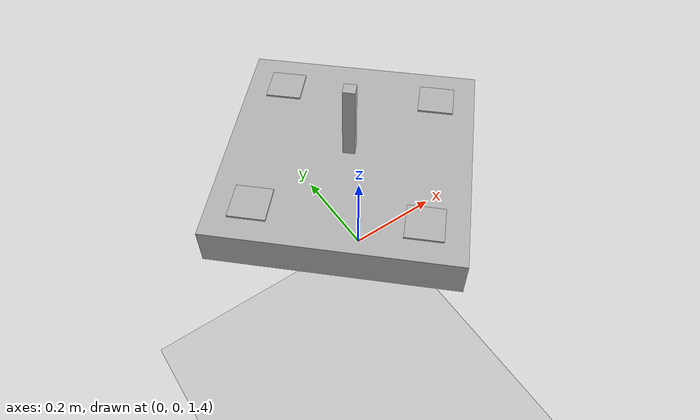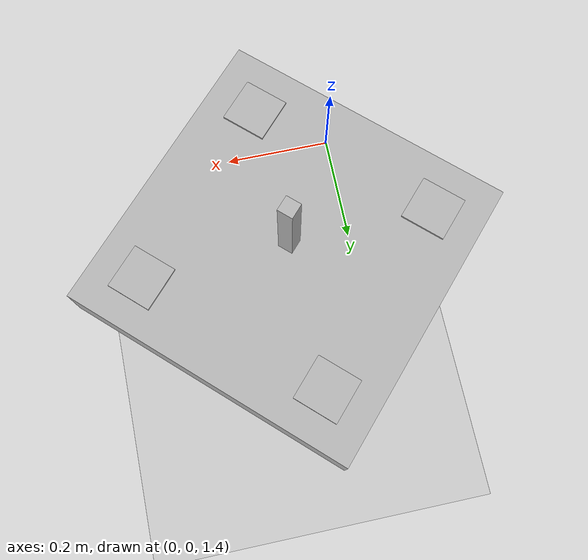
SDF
<?xml version="1.0" encoding="UTF-8"?>
<sdf version='1.6'>
  <world name='world'>

    <!-- Martian Gravity-->
    <gravity>0 0 -3.711</gravity>

    <include>
      <uri>model://sun</uri>
    </include>

    <include>
      <uri>model://ground_plane</uri>
    </include>

    <model name='ar_tags'>
      <link name='mole'>
        <inertial>
          <mass>0.5</mass>
          <inertia>
            <ixx>0.0308333333333</ixx>
            <ixy>0</ixy>
            <ixz>0</ixz>
            <iyy>0.0308333333333</iyy>
            <iyz>0</iyz>
            <izz>0.06</izz>
          </inertia>
        </inertial>

        <collision name='collision'>
          <geometry>
            <box>
              <size>0.6 0.6 0.1</size>
            </box>
          </geometry>
        </collision>

        <visual name='visual'>
          <geometry>
            <box>
              <size>0.6 0.6 0.1</size>
            </box>
          </geometry>
        </visual>
      </link>

      <joint name="mole_nob" type="fixed">
        <pose>0 0 0.05 0 0 0</pose>
        <child>nob</child>
        <parent>mole</parent>
        <axis>
          <xyz>0 0 1</xyz>
        </axis>
      </joint>

      <link name='nob'>
       <pose>0 0 0 0 0 0</pose>
        <inertial>
          <mass>0.1</mass>
          <inertia>
            <ixx>0.00000000003</ixx>
            <ixy>0</ixy>
            <ixz>0</ixz>
            <iyy>0.00000000003</iyy>
            <iyz>0</iyz>
            <izz>0.00000000006</izz>
          </inertia>
        </inertial>

        <collision name='collision'>
         <pose>0 0 0.125 0 0 0</pose>
          <geometry>
            <box>
              <size>0.03 0.03 0.25</size>
            </box>
          </geometry>
           <surface>
            <contact>
              <poissons_ratio>0.347</poissons_ratio>
              <elastic_modulus>8.8e+09</elastic_modulus>
              <ode>
                <kp>100000</kp>
                <kd>100</kd>
                <max_vel>100</max_vel>
                <min_depth>0.001</min_depth>
              </ode>
            </contact>
            <friction>
              <torsional>
                <coefficient>1</coefficient>
                <use_patch_radius>0</use_patch_radius>
                <surface_radius>0.01</surface_radius>
                <ode/>
              </torsional>
              <ode/>
            </friction>
          </surface>
          <max_contacts>10</max_contacts>
        </collision>

        <visual name='visual'>
          <pose>0 0 0.125 0 0 0</pose>
          <geometry>
            <box>
              <size>0.03 0.03 0.25</size>
            </box>
          </geometry>
        </visual>
      </link>

      <joint name="mole_tag_1" type="fixed">
        <pose>0 0 0 0 0 0</pose>
        <child>tag_1</child>
        <parent>mole</parent>
        <axis>
            <xyz>0 0 1</xyz>
        </axis>
      </joint>

      <link name='tag_1'>
        <pose>0.2 0.2 0.05 0 0 0</pose>
        <collision name='collision'>
          <geometry>
            <box>
              <size>0.1 0.1 0.01</size>
            </box>
          </geometry>
        </collision>

        <visual name='visual'>
          <geometry>
             <mesh>
                <uri>file://1n.dae</uri></mesh>
          </geometry>
        </visual>
      </link>

      <joint name="mole_tag_2" type="fixed">
        <pose>0 0 0 0 0 0</pose>
        <child>tag_2</child>
        <parent>mole</parent>
        <axis>
          <xyz>0 0 1</xyz>
        </axis>
      </joint>

      <link name='tag_2'>
        <pose>-0.2 0.2 0.05 0 0 0</pose>
        <collision name='collision'>
          <geometry>
            <box>
              <size>0.1 0.1 0.01</size>
            </box>
          </geometry>
        </collision>

        <visual name='visual'>
          <geometry>
             <mesh><uri>file://2n.dae</uri></mesh>
          </geometry>
        </visual>
      </link>

      <joint name="mole_tag_3" type="fixed">
        <pose>0 0 0 0 0 0</pose>
        <child>tag_3</child>
        <parent>mole</parent>
        <axis>
          <xyz>0 0 1</xyz>
        </axis>
      </joint>

      <link name='tag_3'>
        <pose>0.2 -0.2 0.05 0 0 0</pose>
        <collision name='collision'>
          <geometry>
            <box>
              <size>0.1 0.1 0.01</size>
            </box>
          </geometry>
        </collision>

        <visual name='visual'>
          <geometry>
             <mesh><uri>file://3n.dae</uri></mesh>
          </geometry>
        </visual>
      </link>

      <joint name="mole_tag_4" type="fixed">
        <pose>0 0 0 0 0 0</pose>
        <child>tag_4</child>
        <parent>mole</parent>
        <axis>
            <xyz>0 0 1</xyz>
        </axis>
      </joint>

      <link name='tag_4'>
        <pose>-0.2 -0.2 0.05 0 0 0</pose>
        <collision name='collision'>
          <geometry>
            <box>
              <size>0.1 0.1 0.01</size>
            </box>
          </geometry>
        </collision>

        <visual name='visual'>
          <geometry>
             <mesh><uri>file://4n.dae</uri></mesh>
          </geometry>
        </visual>
      </link>
    <pose frame='world'>0.119080  0.206842  1.4  0  0  0.820461 </pose>
   </model>

  </world>
</sdf>
